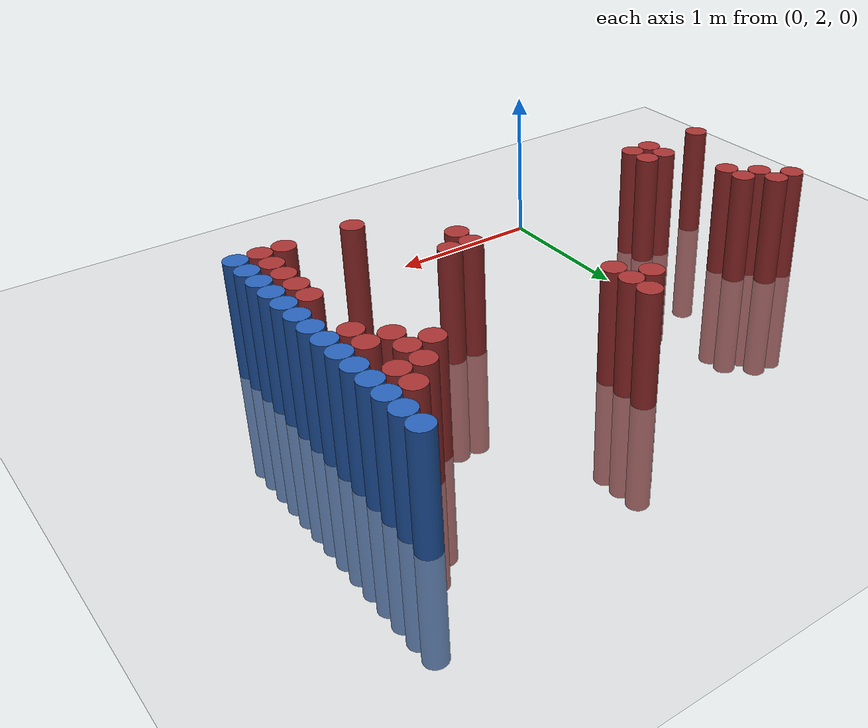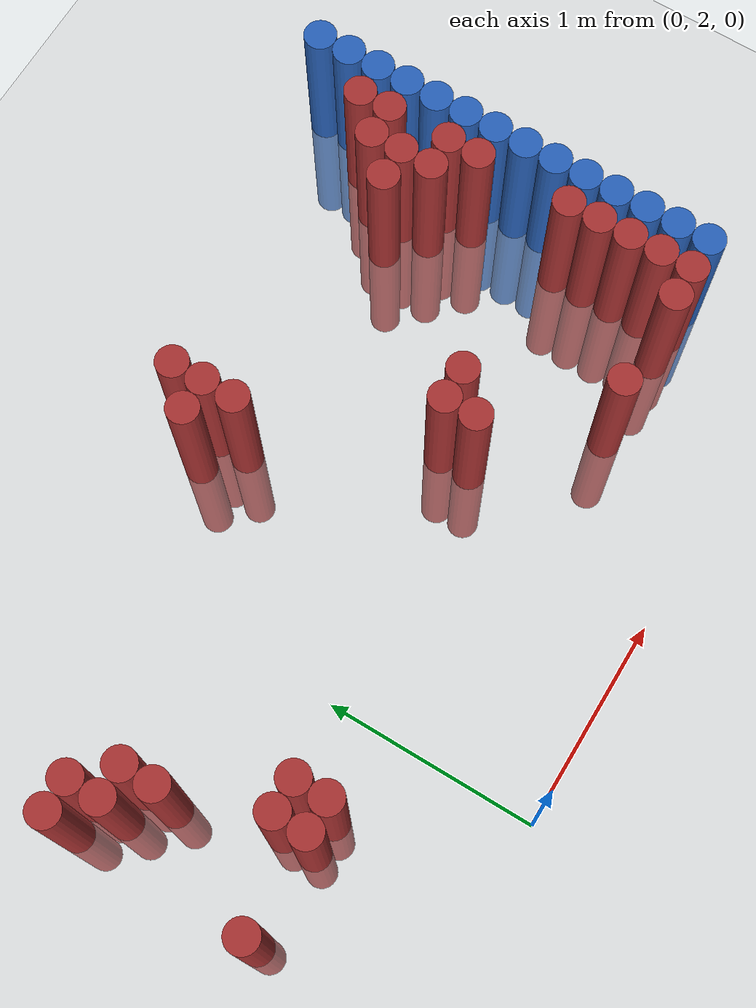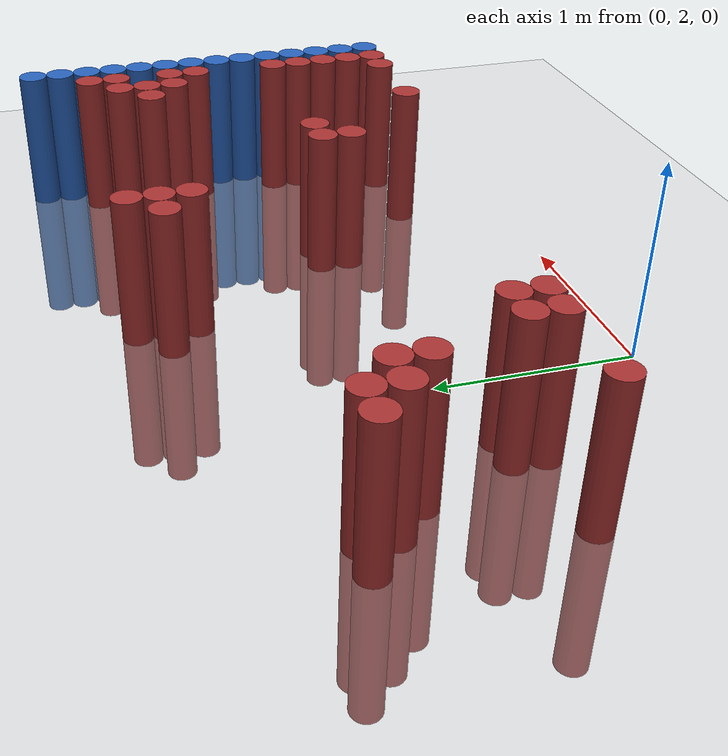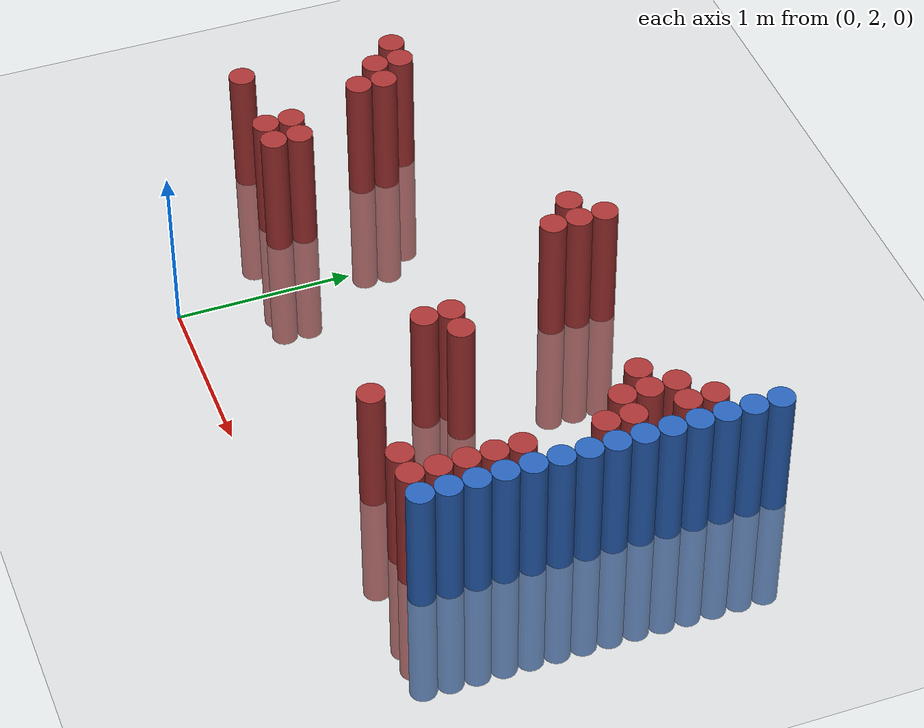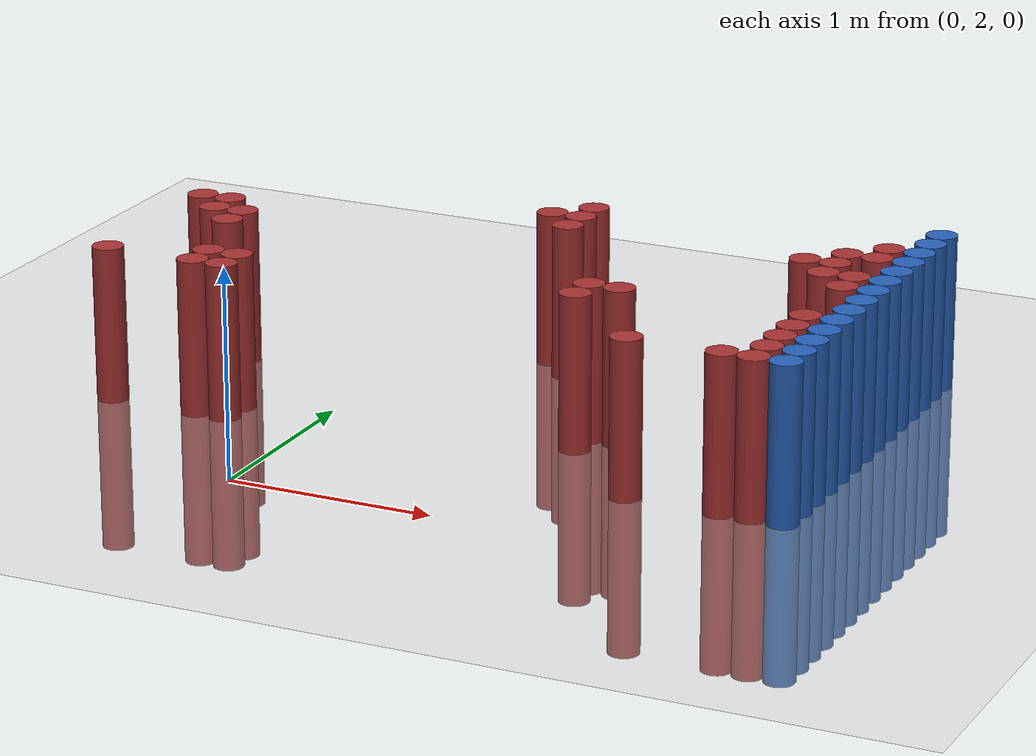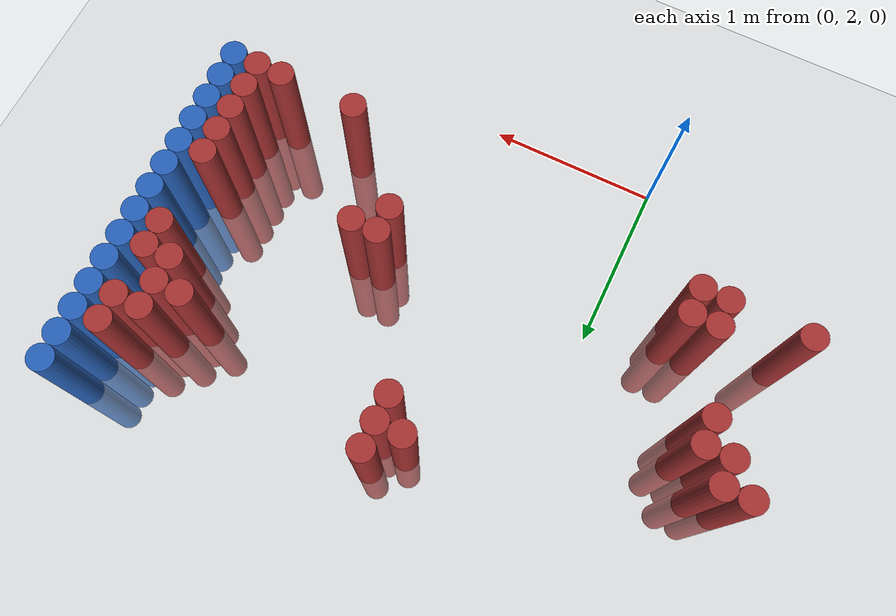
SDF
<sdf version="1.6">
 <world name="default">
  <model name="ground_plane">
   <static>1</static>
   <link name="link">
    <collision name="collision">
     <geometry><plane><normal>0 0 1</normal><size>100 100</size></plane></geometry>
     <surface><friction><ode><mu>100</mu><mu2>50</mu2></ode></friction></surface>
    </collision>
    <visual name="visual">
     <cast_shadows>0</cast_shadows>
     <geometry><plane><normal>0 0 1</normal><size>100 100</size></plane></geometry>
     <material>
      <script><uri>file://media/materials/scripts/gazebo.material</uri><name>Gazebo/Grey</name></script>
     </material>
    </visual>
   </link>
  </model>
  <model name="unit_cylinder_158">
   <static>1</static>
   <pose>-1.025000 2.725000 0.000000 0.000000 0.000000 0.000000</pose>
   <link name="link">
    <inertial>
     <mass>1</mass>
     <inertia><ixx>0.145833</ixx><ixy>0</ixy><ixz>0</ixz><iyy>0.145833</iyy><iyz>0</iyz><izz>0.125</izz></inertia>
    </inertial>
    <collision name="collision">
     <geometry><cylinder><radius>0.075000</radius><length>1.5</length></cylinder></geometry>
    </collision>
    <visual name="visual">
     <geometry><cylinder><radius>0.075000</radius><length>1.5</length></cylinder></geometry>
     <material>
      <ambient>0.648000 0.192000 0.192000 1</ambient>
      <diffuse>0.648000 0.192000 0.192000 1</diffuse>
     </material>
     <material>
      <script><name>Gazebo/Grey</name><uri>file://media/materials/scripts/gazebo.material</uri></script>
     </material>
    </visual>
   </link>
  </model>
  <model name="unit_cylinder_159">
   <static>1</static>
   <pose>-1.025000 3.625000 0.000000 0.000000 0.000000 0.000000</pose>
   <link name="link">
    <inertial>
     <mass>1</mass>
     <inertia><ixx>0.145833</ixx><ixy>0</ixy><ixz>0</ixz><iyy>0.145833</iyy><iyz>0</iyz><izz>0.125</izz></inertia>
    </inertial>
    <collision name="collision">
     <geometry><cylinder><radius>0.075000</radius><length>1.5</length></cylinder></geometry>
    </collision>
    <visual name="visual">
     <geometry><cylinder><radius>0.075000</radius><length>1.5</length></cylinder></geometry>
     <material>
      <ambient>0.648000 0.192000 0.192000 1</ambient>
      <diffuse>0.648000 0.192000 0.192000 1</diffuse>
     </material>
     <material>
      <script><name>Gazebo/Grey</name><uri>file://media/materials/scripts/gazebo.material</uri></script>
     </material>
    </visual>
   </link>
  </model>
  <model name="unit_cylinder_164">
   <static>1</static>
   <pose>-0.875000 3.475000 0.000000 0.000000 0.000000 0.000000</pose>
   <link name="link">
    <inertial>
     <mass>1</mass>
     <inertia><ixx>0.145833</ixx><ixy>0</ixy><ixz>0</ixz><iyy>0.145833</iyy><iyz>0</iyz><izz>0.125</izz></inertia>
    </inertial>
    <collision name="collision">
     <geometry><cylinder><radius>0.075000</radius><length>1.5</length></cylinder></geometry>
    </collision>
    <visual name="visual">
     <geometry><cylinder><radius>0.075000</radius><length>1.5</length></cylinder></geometry>
     <material>
      <ambient>0.648000 0.192000 0.192000 1</ambient>
      <diffuse>0.648000 0.192000 0.192000 1</diffuse>
     </material>
     <material>
      <script><name>Gazebo/Grey</name><uri>file://media/materials/scripts/gazebo.material</uri></script>
     </material>
    </visual>
   </link>
  </model>
  <model name="unit_cylinder_165">
   <static>1</static>
   <pose>-0.875000 3.625000 0.000000 0.000000 0.000000 0.000000</pose>
   <link name="link">
    <inertial>
     <mass>1</mass>
     <inertia><ixx>0.145833</ixx><ixy>0</ixy><ixz>0</ixz><iyy>0.145833</iyy><iyz>0</iyz><izz>0.125</izz></inertia>
    </inertial>
    <collision name="collision">
     <geometry><cylinder><radius>0.075000</radius><length>1.5</length></cylinder></geometry>
    </collision>
    <visual name="visual">
     <geometry><cylinder><radius>0.075000</radius><length>1.5</length></cylinder></geometry>
     <material>
      <ambient>0.648000 0.192000 0.192000 1</ambient>
      <diffuse>0.648000 0.192000 0.192000 1</diffuse>
     </material>
     <material>
      <script><name>Gazebo/Grey</name><uri>file://media/materials/scripts/gazebo.material</uri></script>
     </material>
    </visual>
   </link>
  </model>
  <model name="unit_cylinder_168">
   <static>1</static>
   <pose>-0.725000 3.325000 0.000000 0.000000 0.000000 0.000000</pose>
   <link name="link">
    <inertial>
     <mass>1</mass>
     <inertia><ixx>0.145833</ixx><ixy>0</ixy><ixz>0</ixz><iyy>0.145833</iyy><iyz>0</iyz><izz>0.125</izz></inertia>
    </inertial>
    <collision name="collision">
     <geometry><cylinder><radius>0.075000</radius><length>1.5</length></cylinder></geometry>
    </collision>
    <visual name="visual">
     <geometry><cylinder><radius>0.075000</radius><length>1.5</length></cylinder></geometry>
     <material>
      <ambient>0.648000 0.192000 0.192000 1</ambient>
      <diffuse>0.648000 0.192000 0.192000 1</diffuse>
     </material>
     <material>
      <script><name>Gazebo/Grey</name><uri>file://media/materials/scripts/gazebo.material</uri></script>
     </material>
    </visual>
   </link>
  </model>
  <model name="unit_cylinder_169">
   <static>1</static>
   <pose>-0.725000 3.475000 0.000000 0.000000 0.000000 0.000000</pose>
   <link name="link">
    <inertial>
     <mass>1</mass>
     <inertia><ixx>0.145833</ixx><ixy>0</ixy><ixz>0</ixz><iyy>0.145833</iyy><iyz>0</iyz><izz>0.125</izz></inertia>
    </inertial>
    <collision name="collision">
     <geometry><cylinder><radius>0.075000</radius><length>1.5</length></cylinder></geometry>
    </collision>
    <visual name="visual">
     <geometry><cylinder><radius>0.075000</radius><length>1.5</length></cylinder></geometry>
     <material>
      <ambient>0.648000 0.192000 0.192000 1</ambient>
      <diffuse>0.648000 0.192000 0.192000 1</diffuse>
     </material>
     <material>
      <script><name>Gazebo/Grey</name><uri>file://media/materials/scripts/gazebo.material</uri></script>
     </material>
    </visual>
   </link>
  </model>
  <model name="unit_cylinder_171">
   <static>1</static>
   <pose>-0.575000 2.725000 0.000000 0.000000 0.000000 0.000000</pose>
   <link name="link">
    <inertial>
     <mass>1</mass>
     <inertia><ixx>0.145833</ixx><ixy>0</ixy><ixz>0</ixz><iyy>0.145833</iyy><iyz>0</iyz><izz>0.125</izz></inertia>
    </inertial>
    <collision name="collision">
     <geometry><cylinder><radius>0.075000</radius><length>1.5</length></cylinder></geometry>
    </collision>
    <visual name="visual">
     <geometry><cylinder><radius>0.075000</radius><length>1.5</length></cylinder></geometry>
     <material>
      <ambient>0.648000 0.192000 0.192000 1</ambient>
      <diffuse>0.648000 0.192000 0.192000 1</diffuse>
     </material>
     <material>
      <script><name>Gazebo/Grey</name><uri>file://media/materials/scripts/gazebo.material</uri></script>
     </material>
    </visual>
   </link>
  </model>
  <model name="unit_cylinder_172">
   <static>1</static>
   <pose>-0.575000 2.875000 0.000000 0.000000 0.000000 0.000000</pose>
   <link name="link">
    <inertial>
     <mass>1</mass>
     <inertia><ixx>0.145833</ixx><ixy>0</ixy><ixz>0</ixz><iyy>0.145833</iyy><iyz>0</iyz><izz>0.125</izz></inertia>
    </inertial>
    <collision name="collision">
     <geometry><cylinder><radius>0.075000</radius><length>1.5</length></cylinder></geometry>
    </collision>
    <visual name="visual">
     <geometry><cylinder><radius>0.075000</radius><length>1.5</length></cylinder></geometry>
     <material>
      <ambient>0.648000 0.192000 0.192000 1</ambient>
      <diffuse>0.648000 0.192000 0.192000 1</diffuse>
     </material>
     <material>
      <script><name>Gazebo/Grey</name><uri>file://media/materials/scripts/gazebo.material</uri></script>
     </material>
    </visual>
   </link>
  </model>
  <model name="unit_cylinder_177">
   <static>1</static>
   <pose>-0.425000 2.725000 0.000000 0.000000 0.000000 0.000000</pose>
   <link name="link">
    <inertial>
     <mass>1</mass>
     <inertia><ixx>0.145833</ixx><ixy>0</ixy><ixz>0</ixz><iyy>0.145833</iyy><iyz>0</iyz><izz>0.125</izz></inertia>
    </inertial>
    <collision name="collision">
     <geometry><cylinder><radius>0.075000</radius><length>1.5</length></cylinder></geometry>
    </collision>
    <visual name="visual">
     <geometry><cylinder><radius>0.075000</radius><length>1.5</length></cylinder></geometry>
     <material>
      <ambient>0.648000 0.192000 0.192000 1</ambient>
      <diffuse>0.648000 0.192000 0.192000 1</diffuse>
     </material>
     <material>
      <script><name>Gazebo/Grey</name><uri>file://media/materials/scripts/gazebo.material</uri></script>
     </material>
    </visual>
   </link>
  </model>
  <model name="unit_cylinder_178">
   <static>1</static>
   <pose>-0.425000 2.875000 0.000000 0.000000 0.000000 0.000000</pose>
   <link name="link">
    <inertial>
     <mass>1</mass>
     <inertia><ixx>0.145833</ixx><ixy>0</ixy><ixz>0</ixz><iyy>0.145833</iyy><iyz>0</iyz><izz>0.125</izz></inertia>
    </inertial>
    <collision name="collision">
     <geometry><cylinder><radius>0.075000</radius><length>1.5</length></cylinder></geometry>
    </collision>
    <visual name="visual">
     <geometry><cylinder><radius>0.075000</radius><length>1.5</length></cylinder></geometry>
     <material>
      <ambient>0.648000 0.192000 0.192000 1</ambient>
      <diffuse>0.648000 0.192000 0.192000 1</diffuse>
     </material>
     <material>
      <script><name>Gazebo/Grey</name><uri>file://media/materials/scripts/gazebo.material</uri></script>
     </material>
    </visual>
   </link>
  </model>
  <model name="unit_cylinder_181">
   <static>1</static>
   <pose>0.625000 4.075000 0.000000 0.000000 0.000000 0.000000</pose>
   <link name="link">
    <inertial>
     <mass>1</mass>
     <inertia><ixx>0.145833</ixx><ixy>0</ixy><ixz>0</ixz><iyy>0.145833</iyy><iyz>0</iyz><izz>0.125</izz></inertia>
    </inertial>
    <collision name="collision">
     <geometry><cylinder><radius>0.075000</radius><length>1.5</length></cylinder></geometry>
    </collision>
    <visual name="visual">
     <geometry><cylinder><radius>0.075000</radius><length>1.5</length></cylinder></geometry>
     <material>
      <ambient>0.648000 0.192000 0.192000 1</ambient>
      <diffuse>0.648000 0.192000 0.192000 1</diffuse>
     </material>
     <material>
      <script><name>Gazebo/Grey</name><uri>file://media/materials/scripts/gazebo.material</uri></script>
     </material>
    </visual>
   </link>
  </model>
  <model name="unit_cylinder_184">
   <static>1</static>
   <pose>0.775000 3.925000 0.000000 0.000000 0.000000 0.000000</pose>
   <link name="link">
    <inertial>
     <mass>1</mass>
     <inertia><ixx>0.145833</ixx><ixy>0</ixy><ixz>0</ixz><iyy>0.145833</iyy><iyz>0</iyz><izz>0.125</izz></inertia>
    </inertial>
    <collision name="collision">
     <geometry><cylinder><radius>0.075000</radius><length>1.5</length></cylinder></geometry>
    </collision>
    <visual name="visual">
     <geometry><cylinder><radius>0.075000</radius><length>1.5</length></cylinder></geometry>
     <material>
      <ambient>0.648000 0.192000 0.192000 1</ambient>
      <diffuse>0.648000 0.192000 0.192000 1</diffuse>
     </material>
     <material>
      <script><name>Gazebo/Grey</name><uri>file://media/materials/scripts/gazebo.material</uri></script>
     </material>
    </visual>
   </link>
  </model>
  <model name="unit_cylinder_185">
   <static>1</static>
   <pose>0.775000 4.075000 0.000000 0.000000 0.000000 0.000000</pose>
   <link name="link">
    <inertial>
     <mass>1</mass>
     <inertia><ixx>0.145833</ixx><ixy>0</ixy><ixz>0</ixz><iyy>0.145833</iyy><iyz>0</iyz><izz>0.125</izz></inertia>
    </inertial>
    <collision name="collision">
     <geometry><cylinder><radius>0.075000</radius><length>1.5</length></cylinder></geometry>
    </collision>
    <visual name="visual">
     <geometry><cylinder><radius>0.075000</radius><length>1.5</length></cylinder></geometry>
     <material>
      <ambient>0.648000 0.192000 0.192000 1</ambient>
      <diffuse>0.648000 0.192000 0.192000 1</diffuse>
     </material>
     <material>
      <script><name>Gazebo/Grey</name><uri>file://media/materials/scripts/gazebo.material</uri></script>
     </material>
    </visual>
   </link>
  </model>
  <model name="unit_cylinder_186">
   <static>1</static>
   <pose>0.775000 4.225000 0.000000 0.000000 0.000000 0.000000</pose>
   <link name="link">
    <inertial>
     <mass>1</mass>
     <inertia><ixx>0.145833</ixx><ixy>0</ixy><ixz>0</ixz><iyy>0.145833</iyy><iyz>0</iyz><izz>0.125</izz></inertia>
    </inertial>
    <collision name="collision">
     <geometry><cylinder><radius>0.075000</radius><length>1.5</length></cylinder></geometry>
    </collision>
    <visual name="visual">
     <geometry><cylinder><radius>0.075000</radius><length>1.5</length></cylinder></geometry>
     <material>
      <ambient>0.648000 0.192000 0.192000 1</ambient>
      <diffuse>0.648000 0.192000 0.192000 1</diffuse>
     </material>
     <material>
      <script><name>Gazebo/Grey</name><uri>file://media/materials/scripts/gazebo.material</uri></script>
     </material>
    </visual>
   </link>
  </model>
  <model name="unit_cylinder_193">
   <static>1</static>
   <pose>1.225000 3.025000 0.000000 0.000000 0.000000 0.000000</pose>
   <link name="link">
    <inertial>
     <mass>1</mass>
     <inertia><ixx>0.145833</ixx><ixy>0</ixy><ixz>0</ixz><iyy>0.145833</iyy><iyz>0</iyz><izz>0.125</izz></inertia>
    </inertial>
    <collision name="collision">
     <geometry><cylinder><radius>0.075000</radius><length>1.5</length></cylinder></geometry>
    </collision>
    <visual name="visual">
     <geometry><cylinder><radius>0.075000</radius><length>1.5</length></cylinder></geometry>
     <material>
      <ambient>0.648000 0.192000 0.192000 1</ambient>
      <diffuse>0.648000 0.192000 0.192000 1</diffuse>
     </material>
     <material>
      <script><name>Gazebo/Grey</name><uri>file://media/materials/scripts/gazebo.material</uri></script>
     </material>
    </visual>
   </link>
  </model>
  <model name="unit_cylinder_194">
   <static>1</static>
   <pose>1.225000 3.175000 0.000000 0.000000 0.000000 0.000000</pose>
   <link name="link">
    <inertial>
     <mass>1</mass>
     <inertia><ixx>0.145833</ixx><ixy>0</ixy><ixz>0</ixz><iyy>0.145833</iyy><iyz>0</iyz><izz>0.125</izz></inertia>
    </inertial>
    <collision name="collision">
     <geometry><cylinder><radius>0.075000</radius><length>1.5</length></cylinder></geometry>
    </collision>
    <visual name="visual">
     <geometry><cylinder><radius>0.075000</radius><length>1.5</length></cylinder></geometry>
     <material>
      <ambient>0.648000 0.192000 0.192000 1</ambient>
      <diffuse>0.648000 0.192000 0.192000 1</diffuse>
     </material>
     <material>
      <script><name>Gazebo/Grey</name><uri>file://media/materials/scripts/gazebo.material</uri></script>
     </material>
    </visual>
   </link>
  </model>
  <model name="unit_cylinder_198">
   <static>1</static>
   <pose>1.375000 3.175000 0.000000 0.000000 0.000000 0.000000</pose>
   <link name="link">
    <inertial>
     <mass>1</mass>
     <inertia><ixx>0.145833</ixx><ixy>0</ixy><ixz>0</ixz><iyy>0.145833</iyy><iyz>0</iyz><izz>0.125</izz></inertia>
    </inertial>
    <collision name="collision">
     <geometry><cylinder><radius>0.075000</radius><length>1.5</length></cylinder></geometry>
    </collision>
    <visual name="visual">
     <geometry><cylinder><radius>0.075000</radius><length>1.5</length></cylinder></geometry>
     <material>
      <ambient>0.648000 0.192000 0.192000 1</ambient>
      <diffuse>0.648000 0.192000 0.192000 1</diffuse>
     </material>
     <material>
      <script><name>Gazebo/Grey</name><uri>file://media/materials/scripts/gazebo.material</uri></script>
     </material>
    </visual>
   </link>
  </model>
  <model name="unit_cylinder_209">
   <static>1</static>
   <pose>1.675000 2.575000 0.000000 0.000000 0.000000 0.000000</pose>
   <link name="link">
    <inertial>
     <mass>1</mass>
     <inertia><ixx>0.145833</ixx><ixy>0</ixy><ixz>0</ixz><iyy>0.145833</iyy><iyz>0</iyz><izz>0.125</izz></inertia>
    </inertial>
    <collision name="collision">
     <geometry><cylinder><radius>0.075000</radius><length>1.5</length></cylinder></geometry>
    </collision>
    <visual name="visual">
     <geometry><cylinder><radius>0.075000</radius><length>1.5</length></cylinder></geometry>
     <material>
      <ambient>0.648000 0.192000 0.192000 1</ambient>
      <diffuse>0.648000 0.192000 0.192000 1</diffuse>
     </material>
     <material>
      <script><name>Gazebo/Grey</name><uri>file://media/materials/scripts/gazebo.material</uri></script>
     </material>
    </visual>
   </link>
  </model>
  <model name="unit_cylinder_217">
   <static>1</static>
   <pose>1.975000 3.925000 0.000000 0.000000 0.000000 0.000000</pose>
   <link name="link">
    <inertial>
     <mass>1</mass>
     <inertia><ixx>0.145833</ixx><ixy>0</ixy><ixz>0</ixz><iyy>0.145833</iyy><iyz>0</iyz><izz>0.125</izz></inertia>
    </inertial>
    <collision name="collision">
     <geometry><cylinder><radius>0.075000</radius><length>1.5</length></cylinder></geometry>
    </collision>
    <visual name="visual">
     <geometry><cylinder><radius>0.075000</radius><length>1.5</length></cylinder></geometry>
     <material>
      <ambient>0.648000 0.192000 0.192000 1</ambient>
      <diffuse>0.648000 0.192000 0.192000 1</diffuse>
     </material>
     <material>
      <script><name>Gazebo/Grey</name><uri>file://media/materials/scripts/gazebo.material</uri></script>
     </material>
    </visual>
   </link>
  </model>
  <model name="unit_cylinder_225">
   <static>1</static>
   <pose>2.125000 2.575000 0.000000 0.000000 0.000000 0.000000</pose>
   <link name="link">
    <inertial>
     <mass>1</mass>
     <inertia><ixx>0.145833</ixx><ixy>0</ixy><ixz>0</ixz><iyy>0.145833</iyy><iyz>0</iyz><izz>0.125</izz></inertia>
    </inertial>
    <collision name="collision">
     <geometry><cylinder><radius>0.075000</radius><length>1.5</length></cylinder></geometry>
    </collision>
    <visual name="visual">
     <geometry><cylinder><radius>0.075000</radius><length>1.5</length></cylinder></geometry>
     <material>
      <ambient>0.648000 0.192000 0.192000 1</ambient>
      <diffuse>0.648000 0.192000 0.192000 1</diffuse>
     </material>
     <material>
      <script><name>Gazebo/Grey</name><uri>file://media/materials/scripts/gazebo.material</uri></script>
     </material>
    </visual>
   </link>
  </model>
  <model name="unit_cylinder_226">
   <static>1</static>
   <pose>2.125000 3.775000 0.000000 0.000000 0.000000 0.000000</pose>
   <link name="link">
    <inertial>
     <mass>1</mass>
     <inertia><ixx>0.145833</ixx><ixy>0</ixy><ixz>0</ixz><iyy>0.145833</iyy><iyz>0</iyz><izz>0.125</izz></inertia>
    </inertial>
    <collision name="collision">
     <geometry><cylinder><radius>0.075000</radius><length>1.5</length></cylinder></geometry>
    </collision>
    <visual name="visual">
     <geometry><cylinder><radius>0.075000</radius><length>1.5</length></cylinder></geometry>
     <material>
      <ambient>0.648000 0.192000 0.192000 1</ambient>
      <diffuse>0.648000 0.192000 0.192000 1</diffuse>
     </material>
     <material>
      <script><name>Gazebo/Grey</name><uri>file://media/materials/scripts/gazebo.material</uri></script>
     </material>
    </visual>
   </link>
  </model>
  <model name="unit_cylinder_227">
   <static>1</static>
   <pose>2.125000 3.925000 0.000000 0.000000 0.000000 0.000000</pose>
   <link name="link">
    <inertial>
     <mass>1</mass>
     <inertia><ixx>0.145833</ixx><ixy>0</ixy><ixz>0</ixz><iyy>0.145833</iyy><iyz>0</iyz><izz>0.125</izz></inertia>
    </inertial>
    <collision name="collision">
     <geometry><cylinder><radius>0.075000</radius><length>1.5</length></cylinder></geometry>
    </collision>
    <visual name="visual">
     <geometry><cylinder><radius>0.075000</radius><length>1.5</length></cylinder></geometry>
     <material>
      <ambient>0.648000 0.192000 0.192000 1</ambient>
      <diffuse>0.648000 0.192000 0.192000 1</diffuse>
     </material>
     <material>
      <script><name>Gazebo/Grey</name><uri>file://media/materials/scripts/gazebo.material</uri></script>
     </material>
    </visual>
   </link>
  </model>
  <model name="unit_cylinder_228">
   <static>1</static>
   <pose>2.125000 4.075000 0.000000 0.000000 0.000000 0.000000</pose>
   <link name="link">
    <inertial>
     <mass>1</mass>
     <inertia><ixx>0.145833</ixx><ixy>0</ixy><ixz>0</ixz><iyy>0.145833</iyy><iyz>0</iyz><izz>0.125</izz></inertia>
    </inertial>
    <collision name="collision">
     <geometry><cylinder><radius>0.075000</radius><length>1.5</length></cylinder></geometry>
    </collision>
    <visual name="visual">
     <geometry><cylinder><radius>0.075000</radius><length>1.5</length></cylinder></geometry>
     <material>
      <ambient>0.648000 0.192000 0.192000 1</ambient>
      <diffuse>0.648000 0.192000 0.192000 1</diffuse>
     </material>
     <material>
      <script><name>Gazebo/Grey</name><uri>file://media/materials/scripts/gazebo.material</uri></script>
     </material>
    </visual>
   </link>
  </model>
  <model name="unit_cylinder_234">
   <static>1</static>
   <pose>2.275000 2.575000 0.000000 0.000000 0.000000 0.000000</pose>
   <link name="link">
    <inertial>
     <mass>1</mass>
     <inertia><ixx>0.145833</ixx><ixy>0</ixy><ixz>0</ixz><iyy>0.145833</iyy><iyz>0</iyz><izz>0.125</izz></inertia>
    </inertial>
    <collision name="collision">
     <geometry><cylinder><radius>0.075000</radius><length>1.5</length></cylinder></geometry>
    </collision>
    <visual name="visual">
     <geometry><cylinder><radius>0.075000</radius><length>1.5</length></cylinder></geometry>
     <material>
      <ambient>0.648000 0.192000 0.192000 1</ambient>
      <diffuse>0.648000 0.192000 0.192000 1</diffuse>
     </material>
     <material>
      <script><name>Gazebo/Grey</name><uri>file://media/materials/scripts/gazebo.material</uri></script>
     </material>
    </visual>
   </link>
  </model>
  <model name="unit_cylinder_235">
   <static>1</static>
   <pose>2.275000 2.725000 0.000000 0.000000 0.000000 0.000000</pose>
   <link name="link">
    <inertial>
     <mass>1</mass>
     <inertia><ixx>0.145833</ixx><ixy>0</ixy><ixz>0</ixz><iyy>0.145833</iyy><iyz>0</iyz><izz>0.125</izz></inertia>
    </inertial>
    <collision name="collision">
     <geometry><cylinder><radius>0.075000</radius><length>1.5</length></cylinder></geometry>
    </collision>
    <visual name="visual">
     <geometry><cylinder><radius>0.075000</radius><length>1.5</length></cylinder></geometry>
     <material>
      <ambient>0.648000 0.192000 0.192000 1</ambient>
      <diffuse>0.648000 0.192000 0.192000 1</diffuse>
     </material>
     <material>
      <script><name>Gazebo/Grey</name><uri>file://media/materials/scripts/gazebo.material</uri></script>
     </material>
    </visual>
   </link>
  </model>
  <model name="unit_cylinder_236">
   <static>1</static>
   <pose>2.275000 2.875000 0.000000 0.000000 0.000000 0.000000</pose>
   <link name="link">
    <inertial>
     <mass>1</mass>
     <inertia><ixx>0.145833</ixx><ixy>0</ixy><ixz>0</ixz><iyy>0.145833</iyy><iyz>0</iyz><izz>0.125</izz></inertia>
    </inertial>
    <collision name="collision">
     <geometry><cylinder><radius>0.075000</radius><length>1.5</length></cylinder></geometry>
    </collision>
    <visual name="visual">
     <geometry><cylinder><radius>0.075000</radius><length>1.5</length></cylinder></geometry>
     <material>
      <ambient>0.648000 0.192000 0.192000 1</ambient>
      <diffuse>0.648000 0.192000 0.192000 1</diffuse>
     </material>
     <material>
      <script><name>Gazebo/Grey</name><uri>file://media/materials/scripts/gazebo.material</uri></script>
     </material>
    </visual>
   </link>
  </model>
  <model name="unit_cylinder_237">
   <static>1</static>
   <pose>2.275000 3.025000 0.000000 0.000000 0.000000 0.000000</pose>
   <link name="link">
    <inertial>
     <mass>1</mass>
     <inertia><ixx>0.145833</ixx><ixy>0</ixy><ixz>0</ixz><iyy>0.145833</iyy><iyz>0</iyz><izz>0.125</izz></inertia>
    </inertial>
    <collision name="collision">
     <geometry><cylinder><radius>0.075000</radius><length>1.5</length></cylinder></geometry>
    </collision>
    <visual name="visual">
     <geometry><cylinder><radius>0.075000</radius><length>1.5</length></cylinder></geometry>
     <material>
      <ambient>0.648000 0.192000 0.192000 1</ambient>
      <diffuse>0.648000 0.192000 0.192000 1</diffuse>
     </material>
     <material>
      <script><name>Gazebo/Grey</name><uri>file://media/materials/scripts/gazebo.material</uri></script>
     </material>
    </visual>
   </link>
  </model>
  <model name="unit_cylinder_238">
   <static>1</static>
   <pose>2.275000 3.175000 0.000000 0.000000 0.000000 0.000000</pose>
   <link name="link">
    <inertial>
     <mass>1</mass>
     <inertia><ixx>0.145833</ixx><ixy>0</ixy><ixz>0</ixz><iyy>0.145833</iyy><iyz>0</iyz><izz>0.125</izz></inertia>
    </inertial>
    <collision name="collision">
     <geometry><cylinder><radius>0.075000</radius><length>1.5</length></cylinder></geometry>
    </collision>
    <visual name="visual">
     <geometry><cylinder><radius>0.075000</radius><length>1.5</length></cylinder></geometry>
     <material>
      <ambient>0.648000 0.192000 0.192000 1</ambient>
      <diffuse>0.648000 0.192000 0.192000 1</diffuse>
     </material>
     <material>
      <script><name>Gazebo/Grey</name><uri>file://media/materials/scripts/gazebo.material</uri></script>
     </material>
    </visual>
   </link>
  </model>
  <model name="unit_cylinder_239">
   <static>1</static>
   <pose>2.275000 3.625000 0.000000 0.000000 0.000000 0.000000</pose>
   <link name="link">
    <inertial>
     <mass>1</mass>
     <inertia><ixx>0.145833</ixx><ixy>0</ixy><ixz>0</ixz><iyy>0.145833</iyy><iyz>0</iyz><izz>0.125</izz></inertia>
    </inertial>
    <collision name="collision">
     <geometry><cylinder><radius>0.075000</radius><length>1.5</length></cylinder></geometry>
    </collision>
    <visual name="visual">
     <geometry><cylinder><radius>0.075000</radius><length>1.5</length></cylinder></geometry>
     <material>
      <ambient>0.648000 0.192000 0.192000 1</ambient>
      <diffuse>0.648000 0.192000 0.192000 1</diffuse>
     </material>
     <material>
      <script><name>Gazebo/Grey</name><uri>file://media/materials/scripts/gazebo.material</uri></script>
     </material>
    </visual>
   </link>
  </model>
  <model name="unit_cylinder_240">
   <static>1</static>
   <pose>2.275000 3.775000 0.000000 0.000000 0.000000 0.000000</pose>
   <link name="link">
    <inertial>
     <mass>1</mass>
     <inertia><ixx>0.145833</ixx><ixy>0</ixy><ixz>0</ixz><iyy>0.145833</iyy><iyz>0</iyz><izz>0.125</izz></inertia>
    </inertial>
    <collision name="collision">
     <geometry><cylinder><radius>0.075000</radius><length>1.5</length></cylinder></geometry>
    </collision>
    <visual name="visual">
     <geometry><cylinder><radius>0.075000</radius><length>1.5</length></cylinder></geometry>
     <material>
      <ambient>0.648000 0.192000 0.192000 1</ambient>
      <diffuse>0.648000 0.192000 0.192000 1</diffuse>
     </material>
     <material>
      <script><name>Gazebo/Grey</name><uri>file://media/materials/scripts/gazebo.material</uri></script>
     </material>
    </visual>
   </link>
  </model>
  <model name="unit_cylinder_241">
   <static>1</static>
   <pose>2.275000 4.075000 0.000000 0.000000 0.000000 0.000000</pose>
   <link name="link">
    <inertial>
     <mass>1</mass>
     <inertia><ixx>0.145833</ixx><ixy>0</ixy><ixz>0</ixz><iyy>0.145833</iyy><iyz>0</iyz><izz>0.125</izz></inertia>
    </inertial>
    <collision name="collision">
     <geometry><cylinder><radius>0.075000</radius><length>1.5</length></cylinder></geometry>
    </collision>
    <visual name="visual">
     <geometry><cylinder><radius>0.075000</radius><length>1.5</length></cylinder></geometry>
     <material>
      <ambient>0.648000 0.192000 0.192000 1</ambient>
      <diffuse>0.648000 0.192000 0.192000 1</diffuse>
     </material>
     <material>
      <script><name>Gazebo/Grey</name><uri>file://media/materials/scripts/gazebo.material</uri></script>
     </material>
    </visual>
   </link>
  </model>
  <model name="unit_cylinder_242">
   <static>1</static>
   <pose>2.275000 4.225000 0.000000 0.000000 0.000000 0.000000</pose>
   <link name="link">
    <inertial>
     <mass>1</mass>
     <inertia><ixx>0.145833</ixx><ixy>0</ixy><ixz>0</ixz><iyy>0.145833</iyy><iyz>0</iyz><izz>0.125</izz></inertia>
    </inertial>
    <collision name="collision">
     <geometry><cylinder><radius>0.075000</radius><length>1.5</length></cylinder></geometry>
    </collision>
    <visual name="visual">
     <geometry><cylinder><radius>0.075000</radius><length>1.5</length></cylinder></geometry>
     <material>
      <ambient>0.648000 0.192000 0.192000 1</ambient>
      <diffuse>0.648000 0.192000 0.192000 1</diffuse>
     </material>
     <material>
      <script><name>Gazebo/Grey</name><uri>file://media/materials/scripts/gazebo.material</uri></script>
     </material>
    </visual>
   </link>
  </model>
  <model name="unit_cylinder_259">
   <static>1</static>
   <pose>2.425000 2.575000 0.000000 0.000000 0.000000 0.000000</pose>
   <link name="link">
    <inertial>
     <mass>1</mass>
     <inertia><ixx>0.145833</ixx><ixy>0</ixy><ixz>0</ixz><iyy>0.145833</iyy><iyz>0</iyz><izz>0.125</izz></inertia>
    </inertial>
    <collision name="collision">
     <geometry><cylinder><radius>0.075000</radius><length>1.5</length></cylinder></geometry>
    </collision>
    <visual name="visual">
     <geometry><cylinder><radius>0.075000</radius><length>1.5</length></cylinder></geometry>
     <material>
      <ambient>0.152000 0.379000 0.720000 1</ambient>
      <diffuse>0.152000 0.379000 0.720000 1</diffuse>
     </material>
     <material>
      <script><name>Gazebo/Grey</name><uri>file://media/materials/scripts/gazebo.material</uri></script>
     </material>
    </visual>
   </link>
  </model>
  <model name="unit_cylinder_260">
   <static>1</static>
   <pose>2.425000 2.725000 0.000000 0.000000 0.000000 0.000000</pose>
   <link name="link">
    <inertial>
     <mass>1</mass>
     <inertia><ixx>0.145833</ixx><ixy>0</ixy><ixz>0</ixz><iyy>0.145833</iyy><iyz>0</iyz><izz>0.125</izz></inertia>
    </inertial>
    <collision name="collision">
     <geometry><cylinder><radius>0.075000</radius><length>1.5</length></cylinder></geometry>
    </collision>
    <visual name="visual">
     <geometry><cylinder><radius>0.075000</radius><length>1.5</length></cylinder></geometry>
     <material>
      <ambient>0.152000 0.379000 0.720000 1</ambient>
      <diffuse>0.152000 0.379000 0.720000 1</diffuse>
     </material>
     <material>
      <script><name>Gazebo/Grey</name><uri>file://media/materials/scripts/gazebo.material</uri></script>
     </material>
    </visual>
   </link>
  </model>
  <model name="unit_cylinder_261">
   <static>1</static>
   <pose>2.425000 2.875000 0.000000 0.000000 0.000000 0.000000</pose>
   <link name="link">
    <inertial>
     <mass>1</mass>
     <inertia><ixx>0.145833</ixx><ixy>0</ixy><ixz>0</ixz><iyy>0.145833</iyy><iyz>0</iyz><izz>0.125</izz></inertia>
    </inertial>
    <collision name="collision">
     <geometry><cylinder><radius>0.075000</radius><length>1.5</length></cylinder></geometry>
    </collision>
    <visual name="visual">
     <geometry><cylinder><radius>0.075000</radius><length>1.5</length></cylinder></geometry>
     <material>
      <ambient>0.152000 0.379000 0.720000 1</ambient>
      <diffuse>0.152000 0.379000 0.720000 1</diffuse>
     </material>
     <material>
      <script><name>Gazebo/Grey</name><uri>file://media/materials/scripts/gazebo.material</uri></script>
     </material>
    </visual>
   </link>
  </model>
  <model name="unit_cylinder_262">
   <static>1</static>
   <pose>2.425000 3.025000 0.000000 0.000000 0.000000 0.000000</pose>
   <link name="link">
    <inertial>
     <mass>1</mass>
     <inertia><ixx>0.145833</ixx><ixy>0</ixy><ixz>0</ixz><iyy>0.145833</iyy><iyz>0</iyz><izz>0.125</izz></inertia>
    </inertial>
    <collision name="collision">
     <geometry><cylinder><radius>0.075000</radius><length>1.5</length></cylinder></geometry>
    </collision>
    <visual name="visual">
     <geometry><cylinder><radius>0.075000</radius><length>1.5</length></cylinder></geometry>
     <material>
      <ambient>0.152000 0.379000 0.720000 1</ambient>
      <diffuse>0.152000 0.379000 0.720000 1</diffuse>
     </material>
     <material>
      <script><name>Gazebo/Grey</name><uri>file://media/materials/scripts/gazebo.material</uri></script>
     </material>
    </visual>
   </link>
  </model>
  <model name="unit_cylinder_263">
   <static>1</static>
   <pose>2.425000 3.175000 0.000000 0.000000 0.000000 0.000000</pose>
   <link name="link">
    <inertial>
     <mass>1</mass>
     <inertia><ixx>0.145833</ixx><ixy>0</ixy><ixz>0</ixz><iyy>0.145833</iyy><iyz>0</iyz><izz>0.125</izz></inertia>
    </inertial>
    <collision name="collision">
     <geometry><cylinder><radius>0.075000</radius><length>1.5</length></cylinder></geometry>
    </collision>
    <visual name="visual">
     <geometry><cylinder><radius>0.075000</radius><length>1.5</length></cylinder></geometry>
     <material>
      <ambient>0.152000 0.379000 0.720000 1</ambient>
      <diffuse>0.152000 0.379000 0.720000 1</diffuse>
     </material>
     <material>
      <script><name>Gazebo/Grey</name><uri>file://media/materials/scripts/gazebo.material</uri></script>
     </material>
    </visual>
   </link>
  </model>
  <model name="unit_cylinder_264">
   <static>1</static>
   <pose>2.425000 3.325000 0.000000 0.000000 0.000000 0.000000</pose>
   <link name="link">
    <inertial>
     <mass>1</mass>
     <inertia><ixx>0.145833</ixx><ixy>0</ixy><ixz>0</ixz><iyy>0.145833</iyy><iyz>0</iyz><izz>0.125</izz></inertia>
    </inertial>
    <collision name="collision">
     <geometry><cylinder><radius>0.075000</radius><length>1.5</length></cylinder></geometry>
    </collision>
    <visual name="visual">
     <geometry><cylinder><radius>0.075000</radius><length>1.5</length></cylinder></geometry>
     <material>
      <ambient>0.152000 0.379000 0.720000 1</ambient>
      <diffuse>0.152000 0.379000 0.720000 1</diffuse>
     </material>
     <material>
      <script><name>Gazebo/Grey</name><uri>file://media/materials/scripts/gazebo.material</uri></script>
     </material>
    </visual>
   </link>
  </model>
  <model name="unit_cylinder_265">
   <static>1</static>
   <pose>2.425000 3.475000 0.000000 0.000000 0.000000 0.000000</pose>
   <link name="link">
    <inertial>
     <mass>1</mass>
     <inertia><ixx>0.145833</ixx><ixy>0</ixy><ixz>0</ixz><iyy>0.145833</iyy><iyz>0</iyz><izz>0.125</izz></inertia>
    </inertial>
    <collision name="collision">
     <geometry><cylinder><radius>0.075000</radius><length>1.5</length></cylinder></geometry>
    </collision>
    <visual name="visual">
     <geometry><cylinder><radius>0.075000</radius><length>1.5</length></cylinder></geometry>
     <material>
      <ambient>0.152000 0.379000 0.720000 1</ambient>
      <diffuse>0.152000 0.379000 0.720000 1</diffuse>
     </material>
     <material>
      <script><name>Gazebo/Grey</name><uri>file://media/materials/scripts/gazebo.material</uri></script>
     </material>
    </visual>
   </link>
  </model>
  <model name="unit_cylinder_266">
   <static>1</static>
   <pose>2.425000 3.625000 0.000000 0.000000 0.000000 0.000000</pose>
   <link name="link">
    <inertial>
     <mass>1</mass>
     <inertia><ixx>0.145833</ixx><ixy>0</ixy><ixz>0</ixz><iyy>0.145833</iyy><iyz>0</iyz><izz>0.125</izz></inertia>
    </inertial>
    <collision name="collision">
     <geometry><cylinder><radius>0.075000</radius><length>1.5</length></cylinder></geometry>
    </collision>
    <visual name="visual">
     <geometry><cylinder><radius>0.075000</radius><length>1.5</length></cylinder></geometry>
     <material>
      <ambient>0.152000 0.379000 0.720000 1</ambient>
      <diffuse>0.152000 0.379000 0.720000 1</diffuse>
     </material>
     <material>
      <script><name>Gazebo/Grey</name><uri>file://media/materials/scripts/gazebo.material</uri></script>
     </material>
    </visual>
   </link>
  </model>
  <model name="unit_cylinder_267">
   <static>1</static>
   <pose>2.425000 3.775000 0.000000 0.000000 0.000000 0.000000</pose>
   <link name="link">
    <inertial>
     <mass>1</mass>
     <inertia><ixx>0.145833</ixx><ixy>0</ixy><ixz>0</ixz><iyy>0.145833</iyy><iyz>0</iyz><izz>0.125</izz></inertia>
    </inertial>
    <collision name="collision">
     <geometry><cylinder><radius>0.075000</radius><length>1.5</length></cylinder></geometry>
    </collision>
    <visual name="visual">
     <geometry><cylinder><radius>0.075000</radius><length>1.5</length></cylinder></geometry>
     <material>
      <ambient>0.152000 0.379000 0.720000 1</ambient>
      <diffuse>0.152000 0.379000 0.720000 1</diffuse>
     </material>
     <material>
      <script><name>Gazebo/Grey</name><uri>file://media/materials/scripts/gazebo.material</uri></script>
     </material>
    </visual>
   </link>
  </model>
  <model name="unit_cylinder_268">
   <static>1</static>
   <pose>2.425000 3.925000 0.000000 0.000000 0.000000 0.000000</pose>
   <link name="link">
    <inertial>
     <mass>1</mass>
     <inertia><ixx>0.145833</ixx><ixy>0</ixy><ixz>0</ixz><iyy>0.145833</iyy><iyz>0</iyz><izz>0.125</izz></inertia>
    </inertial>
    <collision name="collision">
     <geometry><cylinder><radius>0.075000</radius><length>1.5</length></cylinder></geometry>
    </collision>
    <visual name="visual">
     <geometry><cylinder><radius>0.075000</radius><length>1.5</length></cylinder></geometry>
     <material>
      <ambient>0.152000 0.379000 0.720000 1</ambient>
      <diffuse>0.152000 0.379000 0.720000 1</diffuse>
     </material>
     <material>
      <script><name>Gazebo/Grey</name><uri>file://media/materials/scripts/gazebo.material</uri></script>
     </material>
    </visual>
   </link>
  </model>
  <model name="unit_cylinder_269">
   <static>1</static>
   <pose>2.425000 4.075000 0.000000 0.000000 0.000000 0.000000</pose>
   <link name="link">
    <inertial>
     <mass>1</mass>
     <inertia><ixx>0.145833</ixx><ixy>0</ixy><ixz>0</ixz><iyy>0.145833</iyy><iyz>0</iyz><izz>0.125</izz></inertia>
    </inertial>
    <collision name="collision">
     <geometry><cylinder><radius>0.075000</radius><length>1.5</length></cylinder></geometry>
    </collision>
    <visual name="visual">
     <geometry><cylinder><radius>0.075000</radius><length>1.5</length></cylinder></geometry>
     <material>
      <ambient>0.152000 0.379000 0.720000 1</ambient>
      <diffuse>0.152000 0.379000 0.720000 1</diffuse>
     </material>
     <material>
      <script><name>Gazebo/Grey</name><uri>file://media/materials/scripts/gazebo.material</uri></script>
     </material>
    </visual>
   </link>
  </model>
  <model name="unit_cylinder_270">
   <static>1</static>
   <pose>2.425000 4.225000 0.000000 0.000000 0.000000 0.000000</pose>
   <link name="link">
    <inertial>
     <mass>1</mass>
     <inertia><ixx>0.145833</ixx><ixy>0</ixy><ixz>0</ixz><iyy>0.145833</iyy><iyz>0</iyz><izz>0.125</izz></inertia>
    </inertial>
    <collision name="collision">
     <geometry><cylinder><radius>0.075000</radius><length>1.5</length></cylinder></geometry>
    </collision>
    <visual name="visual">
     <geometry><cylinder><radius>0.075000</radius><length>1.5</length></cylinder></geometry>
     <material>
      <ambient>0.152000 0.379000 0.720000 1</ambient>
      <diffuse>0.152000 0.379000 0.720000 1</diffuse>
     </material>
     <material>
      <script><name>Gazebo/Grey</name><uri>file://media/materials/scripts/gazebo.material</uri></script>
     </material>
    </visual>
   </link>
  </model>
  <model name="unit_cylinder_271">
   <static>1</static>
   <pose>2.425000 4.375000 0.000000 0.000000 0.000000 0.000000</pose>
   <link name="link">
    <inertial>
     <mass>1</mass>
     <inertia><ixx>0.145833</ixx><ixy>0</ixy><ixz>0</ixz><iyy>0.145833</iyy><iyz>0</iyz><izz>0.125</izz></inertia>
    </inertial>
    <collision name="collision">
     <geometry><cylinder><radius>0.075000</radius><length>1.5</length></cylinder></geometry>
    </collision>
    <visual name="visual">
     <geometry><cylinder><radius>0.075000</radius><length>1.5</length></cylinder></geometry>
     <material>
      <ambient>0.152000 0.379000 0.720000 1</ambient>
      <diffuse>0.152000 0.379000 0.720000 1</diffuse>
     </material>
     <material>
      <script><name>Gazebo/Grey</name><uri>file://media/materials/scripts/gazebo.material</uri></script>
     </material>
    </visual>
   </link>
  </model>
  <model name="unit_cylinder_272">
   <static>1</static>
   <pose>2.425000 4.525000 0.000000 0.000000 0.000000 0.000000</pose>
   <link name="link">
    <inertial>
     <mass>1</mass>
     <inertia><ixx>0.145833</ixx><ixy>0</ixy><ixz>0</ixz><iyy>0.145833</iyy><iyz>0</iyz><izz>0.125</izz></inertia>
    </inertial>
    <collision name="collision">
     <geometry><cylinder><radius>0.075000</radius><length>1.5</length></cylinder></geometry>
    </collision>
    <visual name="visual">
     <geometry><cylinder><radius>0.075000</radius><length>1.5</length></cylinder></geometry>
     <material>
      <ambient>0.152000 0.379000 0.720000 1</ambient>
      <diffuse>0.152000 0.379000 0.720000 1</diffuse>
     </material>
     <material>
      <script><name>Gazebo/Grey</name><uri>file://media/materials/scripts/gazebo.material</uri></script>
     </material>
    </visual>
   </link>
  </model>
 </world>
</sdf>
